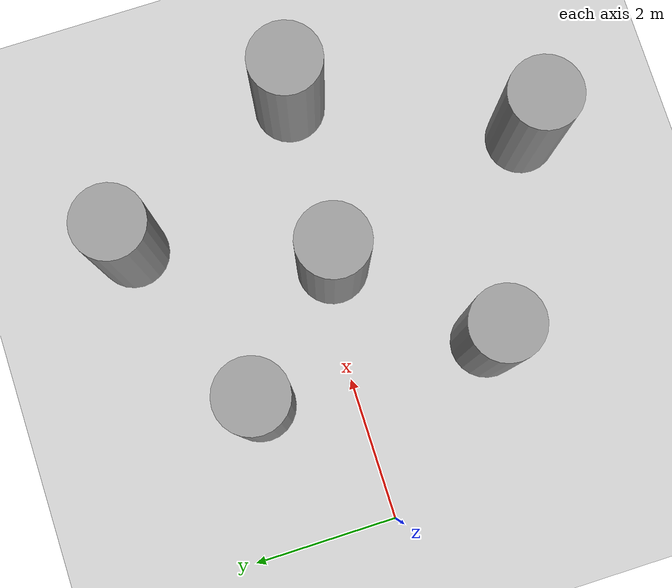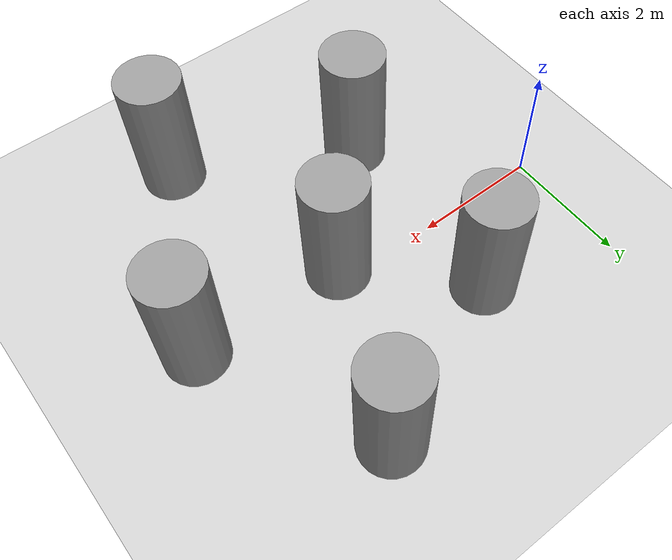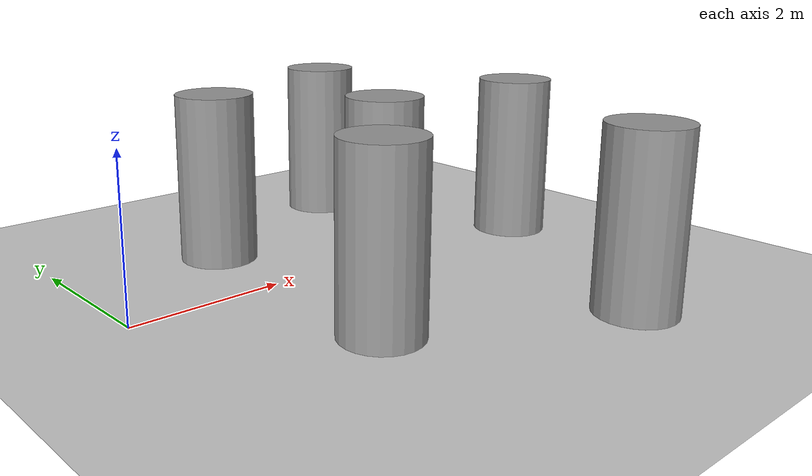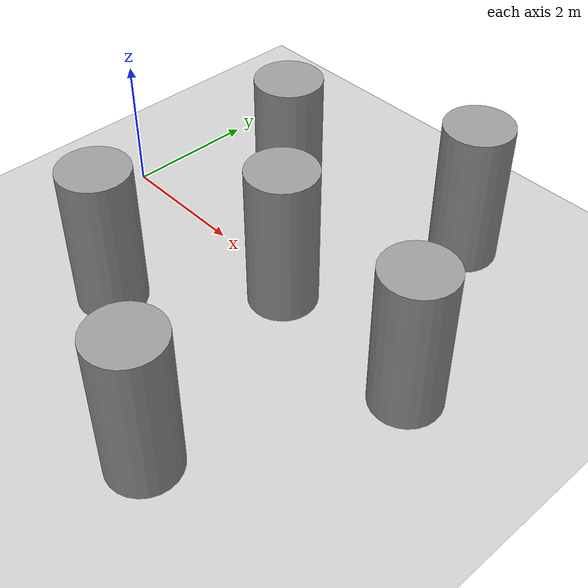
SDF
<sdf version="1.6">
 <world name="default">
  <light name="sun" type="directional">
   <pose>0 0 10 0 -0 0</pose>
   <diffuse>0.8 0.8 0.8 1</diffuse>
   <specular>0.2 0.2 0.2 1</specular>
   <attenuation>
    <range>1000</range>
    <constant>0.9</constant>
    <linear>0.01</linear>
    <quadratic>0.001</quadratic>
   </attenuation>
   <direction>-0.5 0.1 -0.9</direction>
  </light>
  <model name="ground_plane">
   <static>1</static>
   <link name="link">
    <collision name="collision">
     <geometry><plane><normal>0 0 1</normal><size>100 100</size></plane></geometry>
     <surface><friction><ode><mu>100</mu><mu2>50</mu2></ode></friction></surface>
    </collision>
    <visual name="visual">
     <cast_shadows>0</cast_shadows>
     <geometry><plane><normal>0 0 1</normal><size>100 100</size></plane></geometry>
     <material>
      <script><uri>file://media/materials/scripts/gazebo.material</uri><name>Gazebo/Grey</name></script>
     </material>
    </visual>
   </link>
  </model>
  <gravity>0 0 -9.8</gravity>
  <magnetic_field>6e-06 2.3e-05 -4.2e-05</magnetic_field>
  <atmosphere type="adiabatic"/>
  <physics name="default_physics" default="0" type="ode">
   <max_step_size>0.001</max_step_size>
   <real_time_factor>1</real_time_factor>
   <real_time_update_rate>1000</real_time_update_rate>
  </physics>
  <scene><ambient>0.4 0.4 0.4 1</ambient><background>0.7 0.7 0.7 1</background><shadows>1</shadows></scene>
  <spherical_coordinates>
   <surface_model>EARTH_WGS84</surface_model>
   <latitude_deg>0</latitude_deg>
   <longitude_deg>0</longitude_deg>
   <elevation>0</elevation>
   <heading_deg>0</heading_deg>
  </spherical_coordinates>
  <model name="unit_cylinder">
   <pose>1.93452 -1.95368 1.09683 0 0 -2e-06</pose>
   <link name="link">
    <inertial>
     <mass>1</mass>
     <inertia><ixx>0.145833</ixx><ixy>0</ixy><ixz>0</ixz><iyy>0.145833</iyy><iyz>0</iyz><izz>0.125</izz></inertia>
    </inertial>
    <collision name="collision">
     <geometry><cylinder><radius>0.5</radius><length>2.19368</length></cylinder></geometry>
    </collision>
    <visual name="visual">
     <geometry><cylinder><radius>0.5</radius><length>2.19368</length></cylinder></geometry>
     <material>
      <script><name>Gazebo/Grey</name><uri>file://media/materials/scripts/gazebo.material</uri></script>
     </material>
    </visual>
   </link>
  </model>
  <model name="unit_cylinder_clone">
   <pose>2.03349 1.31151 1.09683 0 0 -3e-06</pose>
   <link name="link">
    <inertial>
     <mass>1</mass>
     <inertia><ixx>0.145833</ixx><ixy>0</ixy><ixz>0</ixz><iyy>0.145833</iyy><iyz>0</iyz><izz>0.125</izz></inertia>
    </inertial>
    <collision name="collision">
     <geometry><cylinder><radius>0.5</radius><length>2.19368</length></cylinder></geometry>
    </collision>
    <visual name="visual">
     <geometry><cylinder><radius>0.5</radius><length>2.19368</length></cylinder></geometry>
     <material>
      <script><name>Gazebo/Grey</name><uri>file://media/materials/scripts/gazebo.material</uri></script>
     </material>
    </visual>
   </link>
  </model>
  <model name="unit_cylinder_clone_0">
   <pose>4.63689 2.36997 1.09683 0 0 -3e-06</pose>
   <link name="link">
    <inertial>
     <mass>1</mass>
     <inertia><ixx>0.145833</ixx><ixy>0</ixy><ixz>0</ixz><iyy>0.145833</iyy><iyz>0</iyz><izz>0.125</izz></inertia>
    </inertial>
    <collision name="collision">
     <geometry><cylinder><radius>0.5</radius><length>2.19368</length></cylinder></geometry>
    </collision>
    <visual name="visual">
     <geometry><cylinder><radius>0.5</radius><length>2.19368</length></cylinder></geometry>
     <material>
      <script><name>Gazebo/Grey</name><uri>file://media/materials/scripts/gazebo.material</uri></script>
     </material>
    </visual>
   </link>
  </model>
  <model name="unit_cylinder_clone_1">
   <pose>4.55488 -3.35471 1.09683 0 -0 2e-06</pose>
   <link name="link">
    <inertial>
     <mass>1</mass>
     <inertia><ixx>0.145833</ixx><ixy>0</ixy><ixz>0</ixz><iyy>0.145833</iyy><iyz>0</iyz><izz>0.125</izz></inertia>
    </inertial>
    <collision name="collision">
     <geometry><cylinder><radius>0.5</radius><length>2.19368</length></cylinder></geometry>
    </collision>
    <visual name="visual">
     <geometry><cylinder><radius>0.5</radius><length>2.19368</length></cylinder></geometry>
     <material>
      <script><name>Gazebo/Grey</name><uri>file://media/materials/scripts/gazebo.material</uri></script>
     </material>
    </visual>
   </link>
  </model>
  <model name="unit_cylinder_clone_2">
   <pose>5.98302 -0.35286 1.09683 0 0 -3e-06</pose>
   <link name="link">
    <inertial>
     <mass>1</mass>
     <inertia><ixx>0.145833</ixx><ixy>0</ixy><ixz>0</ixz><iyy>0.145833</iyy><iyz>0</iyz><izz>0.125</izz></inertia>
    </inertial>
    <collision name="collision">
     <geometry><cylinder><radius>0.5</radius><length>2.19368</length></cylinder></geometry>
    </collision>
    <visual name="visual">
     <geometry><cylinder><radius>0.5</radius><length>2.19368</length></cylinder></geometry>
     <material>
      <script><name>Gazebo/Grey</name><uri>file://media/materials/scripts/gazebo.material</uri></script>
     </material>
    </visual>
   </link>
  </model>
  <model name="unit_cylinder_clone_3">
   <pose>3.5699 -0.228383 1.09684 0 -0 -3e-06</pose>
   <link name="link">
    <inertial>
     <mass>1</mass>
     <inertia><ixx>0.145833</ixx><ixy>0</ixy><ixz>0</ixz><iyy>0.145833</iyy><iyz>0</iyz><izz>0.125</izz></inertia>
    </inertial>
    <collision name="collision">
     <geometry><cylinder><radius>0.5</radius><length>2.19368</length></cylinder></geometry>
    </collision>
    <visual name="visual">
     <geometry><cylinder><radius>0.5</radius><length>2.19368</length></cylinder></geometry>
     <material>
      <script><name>Gazebo/Grey</name><uri>file://media/materials/scripts/gazebo.material</uri></script>
     </material>
    </visual>
   </link>
  </model>
 </world>
</sdf>
